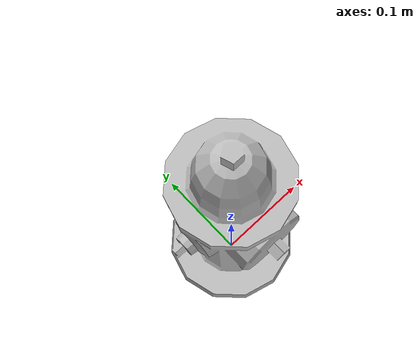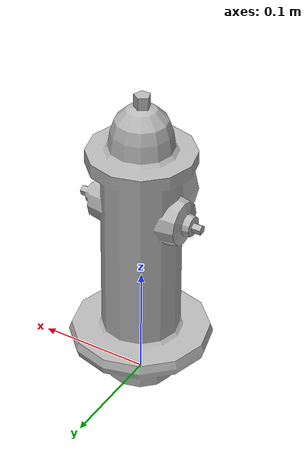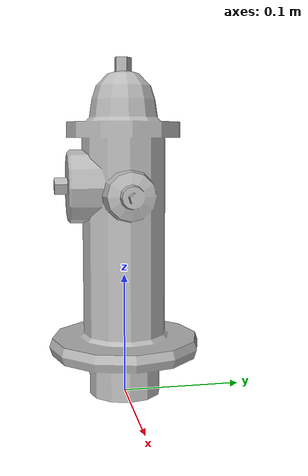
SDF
<?xml version="1.0" ?>
<sdf version="1.5">
  <model name="fire_hydrant">
    <static>true</static>
    <link name="link">
      <collision name="collision">
        <geometry>
          <mesh>
            <uri>model://fire_hydrant/meshes/fire_hydrant.dae</uri>
            <scale>0.3 0.3 0.3</scale>
          </mesh>
        </geometry>
      </collision>
      <visual name="visual">
        <geometry>
          <mesh>
            <uri>model://fire_hydrant/meshes/fire_hydrant.dae</uri>
            <scale>0.3 0.3 0.3</scale>
          </mesh>
        </geometry>
      </visual>
    </link>
  </model>
</sdf>
